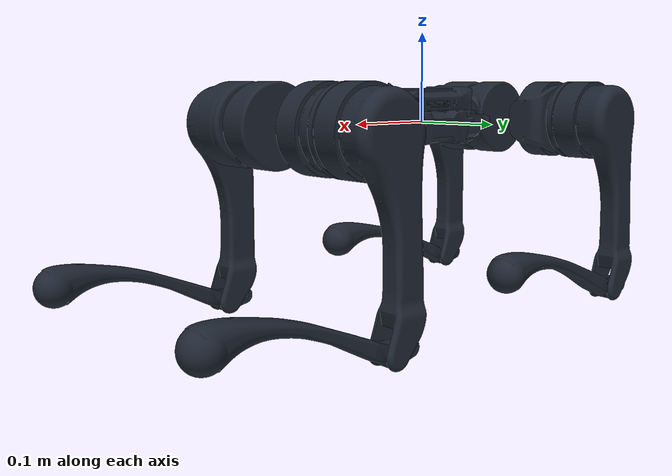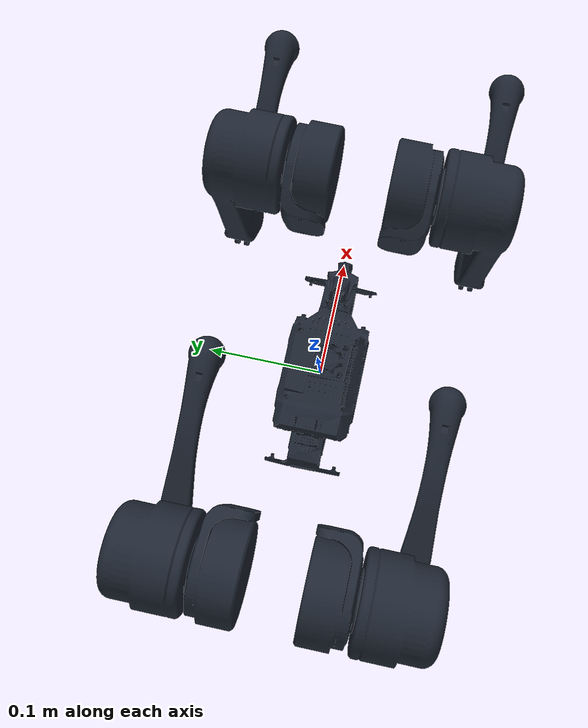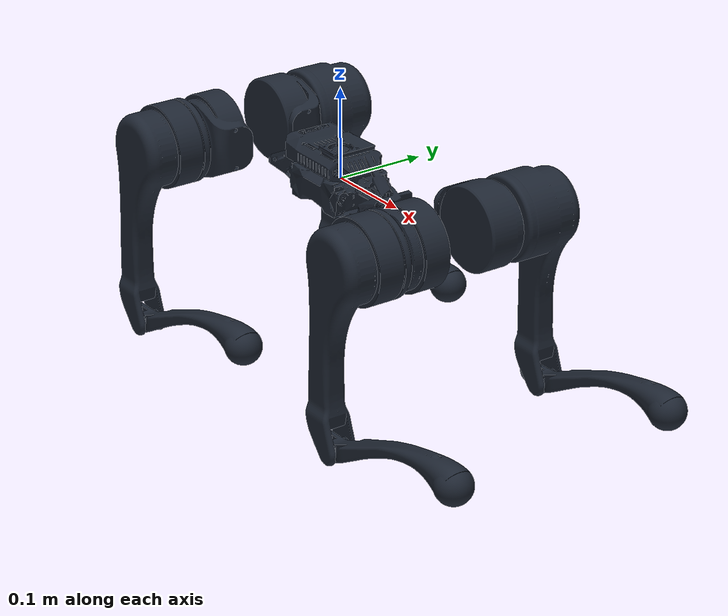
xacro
<?xml version="1.0" ?>
<robot name="a1_description" xmlns:xacro="http://www.ros.org/wiki/xacro">
  <material name="black">
    <color rgba="0.0 0.0 0.0 1.0"/>
  </material>
  <material name="blue">
    <color rgba="0.0 0.0 0.8 1.0"/>
  </material>
  <material name="green">
    <color rgba="0.0 0.8 0.0 1.0"/>
  </material>
  <material name="grey">
    <color rgba="0.2 0.2 0.2 1.0"/>
  </material>
  <material name="silver">
    <color rgba="0.913725490196 0.913725490196 0.847058823529 1.0"/>
  </material>
  <material name="orange">
    <color rgba="0.12 0.15 0.2 1.0"/>
  </material>
  <material name="brown">
    <color rgba="0.870588235294 0.811764705882 0.764705882353 1.0"/>
  </material>
  <material name="red">
    <color rgba="0.8 0.0 0.0 1.0"/>
  </material>
  <material name="white">
    <color rgba="1.0 1.0 1.0 1.0"/>
  </material>
  <link name="base">
    <visual>
      <origin rpy="0 0 0" xyz="0 0 0"/>
      <geometry>
        <box size="0.001 0.001 0.001"/>
      </geometry>
    </visual>
  </link>
  <joint name="floating_base" type="fixed">
    <origin rpy="0 0 0" xyz="0 0 0"/>
    <parent link="base"/>
    <child link="trunk"/>
  </joint>
  <link name="trunk">
    <visual>
      <origin rpy="0 0 0" xyz="0 0 0"/>
      <geometry>
        <mesh filename="../meshes/trunk.dae" scale="1 1 1"/>
      </geometry>
      <material name="orange"/>
    </visual>
    <collision>
      <origin rpy="0 0 0" xyz="0 0 0"/>
      <geometry>
        <box size="0.267 0.194 0.114"/>
      </geometry>
    </collision>
    <inertial>
      <origin rpy="0 0 0" xyz="0.012731 0.002186 0.000515"/>
      <mass value="4.713"/>
      <inertia ixx="0.01683993" ixy="8.3902e-05" ixz="0.000597679" iyy="0.056579028" iyz="2.5134e-05" izz="0.064713601"/>
    </inertial>
  </link>
  <joint name="imu_joint" type="fixed">
    <parent link="trunk"/>
    <child link="imu_link"/>
    <origin rpy="0 0 0" xyz="0 0 0"/>
  </joint>
  <link name="imu_link">
    <inertial>
      <mass value="0.001"/>
      <origin rpy="0 0 0" xyz="0 0 0"/>
      <inertia ixx="0.0001" ixy="0" ixz="0" iyy="0.0001" iyz="0" izz="0.0001"/>
    </inertial>
    <visual>
      <origin rpy="0 0 0" xyz="0 0 0"/>
      <geometry>
        <box size="0.001 0.001 0.001"/>
      </geometry>
      <material name="red"/>
    </visual>
  </link>
  <joint name="fr_j0" type="revolute">
    <origin rpy="0 0 0" xyz="0.183 -0.047 0"/>
    <parent link="trunk"/>
    <child link="fr_l0"/>
    <axis xyz="1 0 0"/>
    <dynamics damping="0" friction="0"/>
    <limit effort="20" lower="-0.802851455917" upper="0.802851455917" velocity="52.4"/>
  </joint>
  <link name="fr_l0">
    <visual>
      <origin rpy="3.14159265359 0 0" xyz="0 0 0"/>
      <geometry>
        <mesh filename="../meshes/hip.dae" scale="1 1 1"/>
      </geometry>
      <material name="orange"/>
    </visual>
    <inertial>
      <origin rpy="0 0 0" xyz="-0.003311 -0.000635 3.1e-05"/>
      <mass value="0.696"/>
      <inertia ixx="0.000469246" ixy="9.409e-06" ixz="-3.42e-07" iyy="0.00080749" iyz="4.66e-07" izz="0.000552929"/>
    </inertial>
  </link>
  <joint name="fr_j1" type="revolute">
    <origin rpy="0 0 0" xyz="0 -0.08505 0"/>
    <parent link="fr_l0"/>
    <child link="fr_l1"/>
    <axis xyz="0 1 0"/>
    <dynamics damping="0" friction="0"/>
    <limit effort="55" lower="-1.0471975512" upper="4.18879020479" velocity="28.6"/>
  </joint>
  <link name="fr_l1">
    <visual>
      <origin rpy="0 0 0" xyz="0 0 0"/>
      <geometry>
        <mesh filename="../meshes/thigh_mirror.dae" scale="1 1 1"/>
      </geometry>
      <material name="orange"/>
    </visual>
    <collision>
      <origin rpy="0 1.57079632679 0" xyz="0 0 -0.1"/>
      <geometry>
        <box size="0.2 0.0245 0.034"/>
      </geometry>
    </collision>
    <inertial>
      <origin rpy="0 0 0" xyz="-0.003237 0.022327 -0.027326"/>
      <mass value="1.013"/>
      <inertia ixx="0.005529065" ixy="-4.825e-06" ixz="0.000343869" iyy="0.005139339" iyz="-2.2448e-05" izz="0.001367788"/>
    </inertial>
  </link>
  <joint name="fr_j2" type="revolute">
    <origin rpy="0 0 0" xyz="0 0 -0.2"/>
    <parent link="fr_l1"/>
    <child link="fr_l2"/>
    <axis xyz="0 1 0"/>
    <dynamics damping="0" friction="0"/>
    <limit effort="55" lower="-2.69653369433" upper="-0.916297857297" velocity="28.6"/>
  </joint>
  <link name="fr_l2">
    <visual>
      <origin rpy="0 0 0" xyz="0 0 0"/>
      <geometry>
        <mesh filename="../meshes/calf.dae" scale="1 1 1"/>
      </geometry>
      <material name="orange"/>
    </visual>
    <collision>
      <origin rpy="0 1.57079632679 0" xyz="0 0 -0.1"/>
      <geometry>
        <box size="0.2 0.016 0.016"/>
      </geometry>
    </collision>
    <inertial>
      <origin rpy="0 0 0" xyz="0.006435 0.0 -0.107388"/>
      <mass value="0.166"/>
      <inertia ixx="0.002997972" ixy="0.0" ixz="-0.000141163" iyy="0.003014022" iyz="0.0" izz="3.2426e-05"/>
    </inertial>
  </link>
  <joint name="fr_j3" type="fixed" dont_collapse="true">
    <origin rpy="0 0 0" xyz="0 0 -0.2"/>
    <parent link="fr_l2"/>
    <child link="fr_l3"/>
  </joint>
  <link name="fr_l3">
    <visual>
      <origin rpy="0 0 0" xyz="0 0 0"/>
      <geometry>
        <sphere radius="0.01"/>
      </geometry>
      <material name="orange"/>
    </visual>
    <collision>
      <origin rpy="0 0 0" xyz="0 0 0"/>
      <geometry>
        <sphere radius="0.02"/>
      </geometry>
    </collision>
    <inertial>
      <mass value="0.06"/>
      <inertia ixx="9.6e-06" ixy="0.0" ixz="0.0" iyy="9.6e-06" iyz="0.0" izz="9.6e-06"/>
    </inertial>
  </link>
  <joint name="fl_j0" type="revolute">
    <origin rpy="0 0 0" xyz="0.183 0.047 0"/>
    <parent link="trunk"/>
    <child link="fl_l0"/>
    <axis xyz="1 0 0"/>
    <dynamics damping="0" friction="0"/>
    <limit effort="20" lower="-0.802851455917" upper="0.802851455917" velocity="52.4"/>
  </joint>
  <link name="fl_l0">
    <visual>
      <origin rpy="0 0 0" xyz="0 0 0"/>
      <geometry>
        <mesh filename="../meshes/hip.dae" scale="1 1 1"/>
      </geometry>
      <material name="orange"/>
    </visual>
    <inertial>
      <origin rpy="0 0 0" xyz="-0.003311 0.000635 3.1e-05"/>
      <mass value="0.696"/>
      <inertia ixx="0.000469246" ixy="-9.409e-06" ixz="-3.42e-07" iyy="0.00080749" iyz="-4.66e-07" izz="0.000552929"/>
    </inertial>
  </link>
  <joint name="fl_j1" type="revolute">
    <origin rpy="0 0 0" xyz="0 0.08505 0"/>
    <parent link="fl_l0"/>
    <child link="fl_l1"/>
    <axis xyz="0 1 0"/>
    <dynamics damping="0" friction="0"/>
    <limit effort="55" lower="-1.0471975512" upper="4.18879020479" velocity="28.6"/>
  </joint>
  <link name="fl_l1">
    <visual>
      <origin rpy="0 0 0" xyz="0 0 0"/>
      <geometry>
        <mesh filename="../meshes/thigh.dae" scale="1 1 1"/>
      </geometry>
      <material name="orange"/>
    </visual>
    <collision>
      <origin rpy="0 1.57079632679 0" xyz="0 0 -0.1"/>
      <geometry>
        <box size="0.2 0.0245 0.034"/>
      </geometry>
    </collision>
    <inertial>
      <origin rpy="0 0 0" xyz="-0.003237 -0.022327 -0.027326"/>
      <mass value="1.013"/>
      <inertia ixx="0.005529065" ixy="4.825e-06" ixz="0.000343869" iyy="0.005139339" iyz="2.2448e-05" izz="0.001367788"/>
    </inertial>
  </link>
  <joint name="fl_j2" type="revolute">
    <origin rpy="0 0 0" xyz="0 0 -0.2"/>
    <parent link="fl_l1"/>
    <child link="fl_l2"/>
    <axis xyz="0 1 0"/>
    <dynamics damping="0" friction="0"/>
    <limit effort="55" lower="-2.69653369433" upper="-0.916297857297" velocity="28.6"/>
  </joint>
  <link name="fl_l2">
    <visual>
      <origin rpy="0 0 0" xyz="0 0 0"/>
      <geometry>
        <mesh filename="../meshes/calf.dae" scale="1 1 1"/>
      </geometry>
      <material name="orange"/>
    </visual>
    <collision>
      <origin rpy="0 1.57079632679 0" xyz="0 0 -0.1"/>
      <geometry>
        <box size="0.2 0.016 0.016"/>
      </geometry>
    </collision>
    <inertial>
      <origin rpy="0 0 0" xyz="0.006435 0.0 -0.107388"/>
      <mass value="0.166"/>
      <inertia ixx="0.002997972" ixy="0.0" ixz="-0.000141163" iyy="0.003014022" iyz="0.0" izz="3.2426e-05"/>
    </inertial>
  </link>
  <joint name="fl_j3" type="fixed" dont_collapse="true">
    <origin rpy="0 0 0" xyz="0 0 -0.2"/>
    <parent link="fl_l2"/>
    <child link="fl_l3"/>
  </joint>
  <link name="fl_l3">
    <visual>
      <origin rpy="0 0 0" xyz="0 0 0"/>
      <geometry>
        <sphere radius="0.01"/>
      </geometry>
      <material name="orange"/>
    </visual>
    <collision>
      <origin rpy="0 0 0" xyz="0 0 0"/>
      <geometry>
        <sphere radius="0.02"/>
      </geometry>
    </collision>
    <inertial>
      <mass value="0.06"/>
      <inertia ixx="9.6e-06" ixy="0.0" ixz="0.0" iyy="9.6e-06" iyz="0.0" izz="9.6e-06"/>
    </inertial>
  </link>
  <joint name="rr_j0" type="revolute">
    <origin rpy="0 0 0" xyz="-0.183 -0.047 0"/>
    <parent link="trunk"/>
    <child link="rr_l0"/>
    <axis xyz="1 0 0"/>
    <dynamics damping="0" friction="0"/>
    <limit effort="20" lower="-0.802851455917" upper="0.802851455917" velocity="52.4"/>
  </joint>
  <link name="rr_l0">
    <visual>
      <origin rpy="3.14159265359 3.14159265359 0" xyz="0 0 0"/>
      <geometry>
        <mesh filename="../meshes/hip.dae" scale="1 1 1"/>
      </geometry>
      <material name="orange"/>
    </visual>
    <inertial>
      <origin rpy="0 0 0" xyz="0.003311 -0.000635 3.1e-05"/>
      <mass value="0.696"/>
      <inertia ixx="0.000469246" ixy="-9.409e-06" ixz="3.42e-07" iyy="0.00080749" iyz="4.66e-07" izz="0.000552929"/>
    </inertial>
  </link>
  <joint name="rr_j1" type="revolute">
    <origin rpy="0 0 0" xyz="0 -0.08505 0"/>
    <parent link="rr_l0"/>
    <child link="rr_l1"/>
    <axis xyz="0 1 0"/>
    <dynamics damping="0" friction="0"/>
    <limit effort="55" lower="-1.0471975512" upper="4.18879020479" velocity="28.6"/>
  </joint>
  <link name="rr_l1">
    <visual>
      <origin rpy="0 0 0" xyz="0 0 0"/>
      <geometry>
        <mesh filename="../meshes/thigh_mirror.dae" scale="1 1 1"/>
      </geometry>
      <material name="orange"/>
    </visual>
    <collision>
      <origin rpy="0 1.57079632679 0" xyz="0 0 -0.1"/>
      <geometry>
        <box size="0.2 0.0245 0.034"/>
      </geometry>
    </collision>
    <inertial>
      <origin rpy="0 0 0" xyz="-0.003237 0.022327 -0.027326"/>
      <mass value="1.013"/>
      <inertia ixx="0.005529065" ixy="-4.825e-06" ixz="0.000343869" iyy="0.005139339" iyz="-2.2448e-05" izz="0.001367788"/>
    </inertial>
  </link>
  <joint name="rr_j2" type="revolute">
    <origin rpy="0 0 0" xyz="0 0 -0.2"/>
    <parent link="rr_l1"/>
    <child link="rr_l2"/>
    <axis xyz="0 1 0"/>
    <dynamics damping="0" friction="0"/>
    <limit effort="55" lower="-2.69653369433" upper="-0.916297857297" velocity="28.6"/>
  </joint>
  <link name="rr_l2">
    <visual>
      <origin rpy="0 0 0" xyz="0 0 0"/>
      <geometry>
        <mesh filename="../meshes/calf.dae" scale="1 1 1"/>
      </geometry>
      <material name="orange"/>
    </visual>
    <collision>
      <origin rpy="0 1.57079632679 0" xyz="0 0 -0.1"/>
      <geometry>
        <box size="0.2 0.016 0.016"/>
      </geometry>
    </collision>
    <inertial>
      <origin rpy="0 0 0" xyz="0.006435 0.0 -0.107388"/>
      <mass value="0.166"/>
      <inertia ixx="0.002997972" ixy="0.0" ixz="-0.000141163" iyy="0.003014022" iyz="0.0" izz="3.2426e-05"/>
    </inertial>
  </link>
  <joint name="rr_j3" type="fixed" dont_collapse="true">
    <origin rpy="0 0 0" xyz="0 0 -0.2"/>
    <parent link="rr_l2"/>
    <child link="rr_l3"/>
  </joint>
  <link name="rr_l3">
    <visual>
      <origin rpy="0 0 0" xyz="0 0 0"/>
      <geometry>
        <sphere radius="0.01"/>
      </geometry>
      <material name="orange"/>
    </visual>
    <collision>
      <origin rpy="0 0 0" xyz="0 0 0"/>
      <geometry>
        <sphere radius="0.02"/>
      </geometry>
    </collision>
    <inertial>
      <mass value="0.06"/>
      <inertia ixx="9.6e-06" ixy="0.0" ixz="0.0" iyy="9.6e-06" iyz="0.0" izz="9.6e-06"/>
    </inertial>
  </link>
  <joint name="rl_j0" type="revolute">
    <origin rpy="0 0 0" xyz="-0.183 0.047 0"/>
    <parent link="trunk"/>
    <child link="rl_l0"/>
    <axis xyz="1 0 0"/>
    <dynamics damping="0" friction="0"/>
    <limit effort="20" lower="-0.802851455917" upper="0.802851455917" velocity="52.4"/>
  </joint>
  <link name="rl_l0">
    <visual>
      <origin rpy="0 3.14159265359 0" xyz="0 0 0"/>
      <geometry>
        <mesh filename="../meshes/hip.dae" scale="1 1 1"/>
      </geometry>
      <material name="orange"/>
    </visual>
    <inertial>
      <origin rpy="0 0 0" xyz="0.003311 0.000635 3.1e-05"/>
      <mass value="0.696"/>
      <inertia ixx="0.000469246" ixy="9.409e-06" ixz="3.42e-07" iyy="0.00080749" iyz="-4.66e-07" izz="0.000552929"/>
    </inertial>
  </link>
  <joint name="rl_j1" type="revolute">
    <origin rpy="0 0 0" xyz="0 0.08505 0"/>
    <parent link="rl_l0"/>
    <child link="rl_l1"/>
    <axis xyz="0 1 0"/>
    <dynamics damping="0" friction="0"/>
    <limit effort="55" lower="-1.0471975512" upper="4.18879020479" velocity="28.6"/>
  </joint>
  <link name="rl_l1">
    <visual>
      <origin rpy="0 0 0" xyz="0 0 0"/>
      <geometry>
        <mesh filename="../meshes/thigh.dae" scale="1 1 1"/>
      </geometry>
      <material name="orange"/>
    </visual>
    <collision>
      <origin rpy="0 1.57079632679 0" xyz="0 0 -0.1"/>
      <geometry>
        <box size="0.2 0.0245 0.034"/>
      </geometry>
    </collision>
    <inertial>
      <origin rpy="0 0 0" xyz="-0.003237 -0.022327 -0.027326"/>
      <mass value="1.013"/>
      <inertia ixx="0.005529065" ixy="4.825e-06" ixz="0.000343869" iyy="0.005139339" iyz="2.2448e-05" izz="0.001367788"/>
    </inertial>
  </link>
  <joint name="rl_j2" type="revolute">
    <origin rpy="0 0 0" xyz="0 0 -0.2"/>
    <parent link="rl_l1"/>
    <child link="rl_l2"/>
    <axis xyz="0 1 0"/>
    <dynamics damping="0" friction="0"/>
    <limit effort="55" lower="-2.69653369433" upper="-0.916297857297" velocity="28.6"/>
  </joint>
  <link name="rl_l2">
    <visual>
      <origin rpy="0 0 0" xyz="0 0 0"/>
      <geometry>
        <mesh filename="../meshes/calf.dae" scale="1 1 1"/>
      </geometry>
      <material name="orange"/>
    </visual>
    <collision>
      <origin rpy="0 1.57079632679 0" xyz="0 0 -0.1"/>
      <geometry>
        <box size="0.2 0.016 0.016"/>
      </geometry>
    </collision>
    <inertial>
      <origin rpy="0 0 0" xyz="0.006435 0.0 -0.107388"/>
      <mass value="0.166"/>
      <inertia ixx="0.002997972" ixy="0.0" ixz="-0.000141163" iyy="0.003014022" iyz="0.0" izz="3.2426e-05"/>
    </inertial>
  </link>
  <joint name="rl_j3" type="fixed" dont_collapse="true">
    <origin rpy="0 0 0" xyz="0 0 -0.2"/>
    <parent link="rl_l2"/>
    <child link="rl_l3"/>
  </joint>
  <link name="rl_l3">
    <visual>
      <origin rpy="0 0 0" xyz="0 0 0"/>
      <geometry>
        <sphere radius="0.01"/>
      </geometry>
      <material name="orange"/>
    </visual>
    <collision>
      <origin rpy="0 0 0" xyz="0 0 0"/>
      <geometry>
        <sphere radius="0.02"/>
      </geometry>
    </collision>
    <inertial>
      <mass value="0.06"/>
      <inertia ixx="9.6e-06" ixy="0.0" ixz="0.0" iyy="9.6e-06" iyz="0.0" izz="9.6e-06"/>
    </inertial>
  </link>
</robot>
